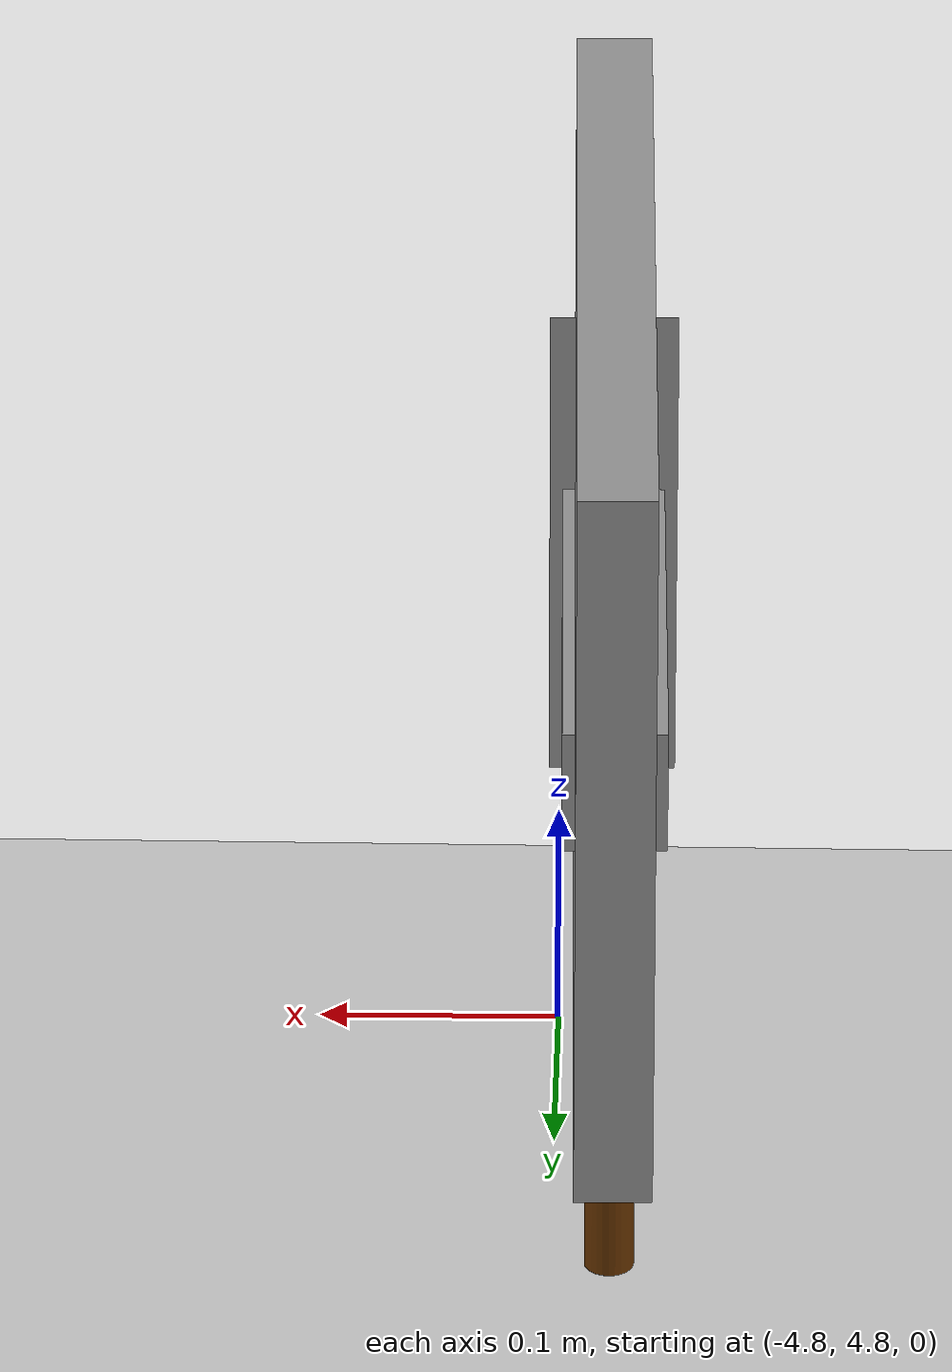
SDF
<sdf version="1.7">
 <world name="default">
  <model name="ground_plane">
   <static>1</static>
   <link name="link">
    <collision name="collision">
     <geometry><plane><normal>0 0 1</normal><size>100 100</size></plane></geometry>
     <surface>
      <contact><collide_bitmask>65535</collide_bitmask></contact>
      <friction><ode><mu>100</mu><mu2>50</mu2></ode></friction>
     </surface>
    </collision>
    <visual name="visual">
     <cast_shadows>0</cast_shadows>
     <geometry><plane><normal>0 0 1</normal><size>100 100</size></plane></geometry>
     <material>
      <script><uri>file://media/materials/scripts/gazebo.material</uri><name>Gazebo/Grey</name></script>
     </material>
    </visual>
   </link>
  </model>
  <model name="arrow_board_5">
   <link name="link_0">
    <inertial>
     <mass>1</mass>
     <inertia><ixx>0.145833</ixx><ixy>0</ixy><ixz>0</ixz><iyy>0.145833</iyy><iyz>0</iyz><izz>0.125</izz></inertia>
    </inertial>
    <pose>-0.01675 0.00625 0.1625 0 -0 0</pose>
    <gravity>0</gravity>
    <visual name="visual">
     <geometry><cylinder><radius>0.01</radius><length>0.3</length></cylinder></geometry>
     <material>
      <lighting>1</lighting>
      <script><uri>file://media/materials/scripts/gazebo.material</uri><name>Gazebo/Grey</name></script>
      <shader type="pixel"><normal_map>__default__</normal_map></shader>
      <ambient>0.4 0.2 0 1</ambient>
      <diffuse>0.4 0.2 0 1</diffuse>
      <specular>0 0 0 1</specular>
      <emissive>0 0 0 1</emissive>
     </material>
    </visual>
    <collision name="collision">
     <geometry><cylinder><radius>0.01</radius><length>0.3</length></cylinder></geometry>
     <surface>
      <friction>
       <ode><mu>1</mu><mu2>1</mu2><fdir1>0 0 0</fdir1><slip1>0</slip1><slip2>0</slip2></ode>
       <torsional>
        <coefficient>1</coefficient>
        <patch_radius>0</patch_radius>
        <surface_radius>0</surface_radius>
        <use_patch_radius>1</use_patch_radius>
        <ode><slip>0</slip></ode>
       </torsional>
      </friction>
      <bounce><restitution_coefficient>0</restitution_coefficient><threshold>1e+06</threshold></bounce>
      <contact>
       <collide_without_contact>0</collide_without_contact>
       <collide_without_contact_bitmask>1</collide_without_contact_bitmask>
       <collide_bitmask>1</collide_bitmask>
       <ode>
        <soft_cfm>0</soft_cfm>
        <soft_erp>0.2</soft_erp>
        <kp>1e+13</kp>
        <kd>1</kd>
        <max_vel>0.01</max_vel>
        <min_depth>0</min_depth>
       </ode>
       <bullet>
        <split_impulse>1</split_impulse>
        <split_impulse_penetration_threshold>-0.01</split_impulse_penetration_threshold>
        <soft_cfm>0</soft_cfm>
        <soft_erp>0.2</soft_erp>
        <kp>1e+13</kp>
        <kd>1</kd>
       </bullet>
      </contact>
     </surface>
    </collision>
   </link>
   <link name="link_1">
    <inertial>
     <mass>1</mass>
     <inertia>
      <ixx>0.166667</ixx>
      <ixy>0</ixy>
      <ixz>0</ixz>
      <iyy>0.166667</iyy>
      <iyz>0</iyz>
      <izz>0.166667</izz>
     </inertia>
    </inertial>
    <pose>-0.01675 0.00625 0.3125 0 -0 0</pose>
    <gravity>0</gravity>
    <visual name="visual">
     <geometry><box><size>0.4 0.03 0.3</size></box></geometry>
     <material>
      <lighting>1</lighting>
      <script><uri>file://media/materials/scripts/gazebo.material</uri><name>Gazebo/Grey</name></script>
      <shader type="pixel"><normal_map>__default__</normal_map></shader>
      <ambient>1 1 1 1</ambient>
      <diffuse>1 1 1 1</diffuse>
      <specular>1 1 1 1</specular>
      <emissive>0 0 0 1</emissive>
     </material>
    </visual>
    <collision name="collision">
     <geometry><box><size>0.4 0.03 0.3</size></box></geometry>
     <surface>
      <friction>
       <ode><mu>1</mu><mu2>1</mu2><fdir1>0 0 0</fdir1><slip1>0</slip1><slip2>0</slip2></ode>
       <torsional>
        <coefficient>1</coefficient>
        <patch_radius>0</patch_radius>
        <surface_radius>0</surface_radius>
        <use_patch_radius>1</use_patch_radius>
        <ode><slip>0</slip></ode>
       </torsional>
      </friction>
      <bounce><restitution_coefficient>0</restitution_coefficient><threshold>1e+06</threshold></bounce>
      <contact>
       <collide_without_contact>0</collide_without_contact>
       <collide_without_contact_bitmask>1</collide_without_contact_bitmask>
       <collide_bitmask>1</collide_bitmask>
       <ode>
        <soft_cfm>0</soft_cfm>
        <soft_erp>0.2</soft_erp>
        <kp>1e+13</kp>
        <kd>1</kd>
        <max_vel>0.01</max_vel>
        <min_depth>0</min_depth>
       </ode>
       <bullet>
        <split_impulse>1</split_impulse>
        <split_impulse_penetration_threshold>-0.01</split_impulse_penetration_threshold>
        <soft_cfm>0</soft_cfm>
        <soft_erp>0.2</soft_erp>
        <kp>1e+13</kp>
        <kd>1</kd>
       </bullet>
      </contact>
     </surface>
    </collision>
   </link>
   <link name="link_2">
    <inertial>
     <mass>1</mass>
     <inertia>
      <ixx>0.166667</ixx>
      <ixy>0</ixy>
      <ixz>0</ixz>
      <iyy>0.166667</iyy>
      <iyz>0</iyz>
      <izz>0.166667</izz>
     </inertia>
    </inertial>
    <pose>-0.06675 0.00625 0.3125 0 -0 0</pose>
    <gravity>0</gravity>
    <visual name="visual">
     <geometry><box><size>0.2 0.04 0.05</size></box></geometry>
     <material>
      <lighting>1</lighting>
      <script><uri>file://media/materials/scripts/gazebo.material</uri><name>Gazebo/Grey</name></script>
      <shader type="pixel"><normal_map>__default__</normal_map></shader>
      <ambient>0 0 0 1</ambient>
      <diffuse>0 0 0 1</diffuse>
      <specular>0 0 0 1</specular>
      <emissive>0 0 0 1</emissive>
     </material>
    </visual>
    <collision name="collision">
     <geometry><box><size>0.2 0.04 0.05</size></box></geometry>
     <surface>
      <friction>
       <ode><mu>1</mu><mu2>1</mu2><fdir1>0 0 0</fdir1><slip1>0</slip1><slip2>0</slip2></ode>
       <torsional>
        <coefficient>1</coefficient>
        <patch_radius>0</patch_radius>
        <surface_radius>0</surface_radius>
        <use_patch_radius>1</use_patch_radius>
        <ode><slip>0</slip></ode>
       </torsional>
      </friction>
      <bounce><restitution_coefficient>0</restitution_coefficient><threshold>1e+06</threshold></bounce>
      <contact>
       <collide_without_contact>0</collide_without_contact>
       <collide_without_contact_bitmask>1</collide_without_contact_bitmask>
       <collide_bitmask>1</collide_bitmask>
       <ode>
        <soft_cfm>0</soft_cfm>
        <soft_erp>0.2</soft_erp>
        <kp>1e+13</kp>
        <kd>1</kd>
        <max_vel>0.01</max_vel>
        <min_depth>0</min_depth>
       </ode>
       <bullet>
        <split_impulse>1</split_impulse>
        <split_impulse_penetration_threshold>-0.01</split_impulse_penetration_threshold>
        <soft_cfm>0</soft_cfm>
        <soft_erp>0.2</soft_erp>
        <kp>1e+13</kp>
        <kd>1</kd>
       </bullet>
      </contact>
     </surface>
    </collision>
   </link>
   <link name="link_4">
    <inertial>
     <mass>1</mass>
     <inertia>
      <ixx>0.166667</ixx>
      <ixy>0</ixy>
      <ixz>0</ixz>
      <iyy>0.166667</iyy>
      <iyz>0</iyz>
      <izz>0.166667</izz>
     </inertia>
    </inertial>
    <pose>0.033583 -0.01875 0.2125 0 -0 0</pose>
    <gravity>0</gravity>
    <visual name="visual">
     <geometry>
      <mesh>
       <uri>/home/ritesh/mobrob_ws/src/mobrob/meshes/arrow_head.stl</uri>
       <scale>0.001 0.001 0.001</scale>
      </mesh>
     </geometry>
     <material>
      <lighting>1</lighting>
      <script><uri>file://media/materials/scripts/gazebo.material</uri><name>Gazebo/Grey</name></script>
      <shader type="pixel"><normal_map>__default__</normal_map></shader>
      <ambient>0 0 0 1</ambient>
      <diffuse>0 0 0 1</diffuse>
      <specular>0 0 0 1</specular>
      <emissive>0 0 0 1</emissive>
     </material>
    </visual>
    <collision name="collision">
     <geometry>
      <mesh>
       <uri>/home/ritesh/mobrob_ws/src/mobrob/meshes/arrow_head.stl</uri>
       <scale>0.001 0.001 0.001</scale>
      </mesh>
     </geometry>
     <surface>
      <friction>
       <ode><mu>1</mu><mu2>1</mu2><fdir1>0 0 0</fdir1><slip1>0</slip1><slip2>0</slip2></ode>
       <torsional>
        <coefficient>1</coefficient>
        <patch_radius>0</patch_radius>
        <surface_radius>0</surface_radius>
        <use_patch_radius>1</use_patch_radius>
        <ode><slip>0</slip></ode>
       </torsional>
      </friction>
      <bounce><restitution_coefficient>0</restitution_coefficient><threshold>1e+06</threshold></bounce>
      <contact>
       <collide_without_contact>0</collide_without_contact>
       <collide_without_contact_bitmask>1</collide_without_contact_bitmask>
       <collide_bitmask>1</collide_bitmask>
       <ode>
        <soft_cfm>0</soft_cfm>
        <soft_erp>0.2</soft_erp>
        <kp>1e+13</kp>
        <kd>1</kd>
        <max_vel>0.01</max_vel>
        <min_depth>0</min_depth>
       </ode>
       <bullet>
        <split_impulse>1</split_impulse>
        <split_impulse_penetration_threshold>-0.01</split_impulse_penetration_threshold>
        <soft_cfm>0</soft_cfm>
        <soft_erp>0.2</soft_erp>
        <kp>1e+13</kp>
        <kd>1</kd>
       </bullet>
      </contact>
     </surface>
    </collision>
   </link>
   <static>0</static>
   <pose>-4.83016 4.99941 0 0 0 -1.55412</pose>
  </model>
 </world>
</sdf>
